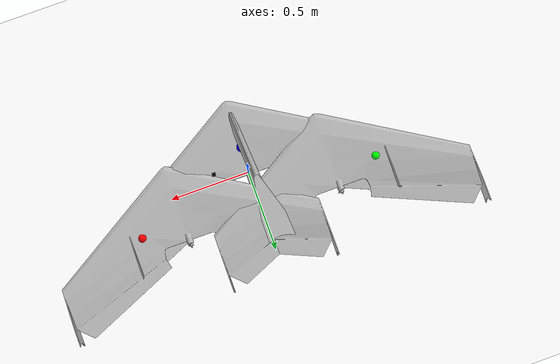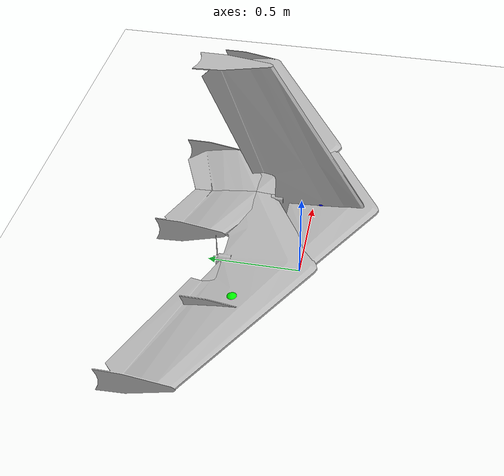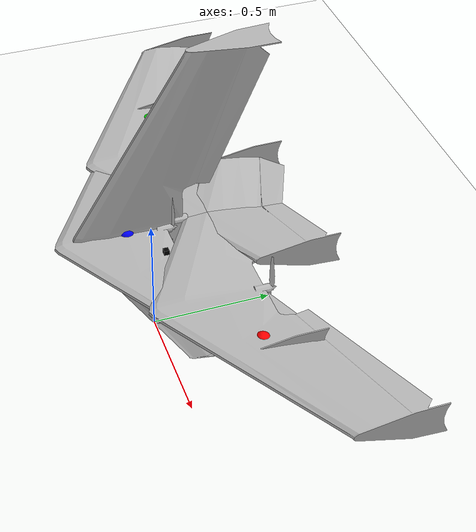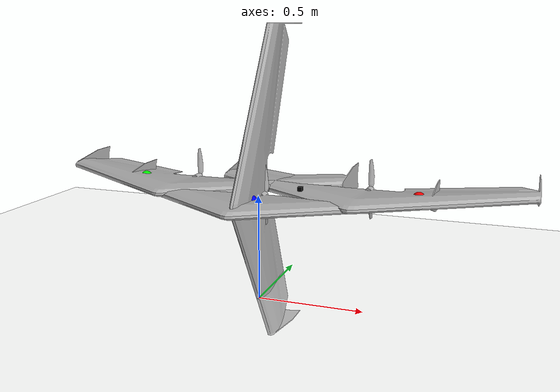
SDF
<?xml version="1.0" ?>
<sdf version="1.9">
  <world name="zephyr_runway">
    <physics name="1ms" type="ignored">
      <max_step_size>0.001</max_step_size>
      <real_time_factor>1.0</real_time_factor>
    </physics>

    <plugin filename="gz-sim-physics-system" name="gz::sim::systems::Physics"></plugin>
    <plugin filename="gz-sim-user-commands-system" name="gz::sim::systems::UserCommands"></plugin>
    <plugin filename="gz-sim-scene-broadcaster-system" name="gz::sim::systems::SceneBroadcaster"></plugin>
    <plugin filename="gz-sim-imu-system" name="gz::sim::systems::Imu"></plugin>
    <plugin filename="gz-sim-navsat-system" name="gz::sim::systems::NavSat"></plugin>
    <plugin filename="gz-sim-sensors-system" name="gz::sim::systems::Sensors"></plugin>

    <scene>
      <ambient>1.0 1.0 1.0</ambient>
      <background>0.8 0.8 0.8</background>
      <sky></sky>
    </scene>

<spherical_coordinates>
  <surface_model>EARTH_WGS84</surface_model>
  <latitude_deg>17.540972</latitude_deg>  <longitude_deg>78.576333</longitude_deg> <elevation>580.0</elevation>             <heading_deg>0</heading_deg>
</spherical_coordinates>

    <light type="directional" name="sun">
      <cast_shadows>true</cast_shadows>
      <pose>0 0 10 0 0 0</pose>
      <diffuse>0.8 0.8 0.8 1</diffuse>
      <specular>0.8 0.8 0.8 1</specular>
      <attenuation>
        <range>1000</range>
        <constant>0.9</constant>
        <linear>0.01</linear>
        <quadratic>0.001</quadratic>
      </attenuation>
      <direction>-0.5 0.1 -0.9</direction>
    </light>

	<model name="ground_plane">
      <static>true</static>
      <link name="link">
        <collision name="collision">
          <geometry>
            <plane>
              <normal>0 0 1</normal>
              <size>5000 5000</size>
            </plane>
          </geometry>
        </collision>
        <visual name="visual">
          <geometry>
            <plane>
              <normal>0 0 1</normal>
              <size>5000 5000</size>
            </plane>
          </geometry>
          <material>
            <ambient>1 1 1 1</ambient>
            <diffuse>1 1 1 1</diffuse>
            <specular>0.2 0.2 0.2 1</specular>
            <pbr>
              <metal>
                <albedo_map>file:///home/kritz/ardupilot_gazebo/materials/textures/bits_texture.png</albedo_map>
                <roughness>0.6</roughness>
                <metalness>0.1</metalness>
              </metal>
            </pbr>
          </material>
        </visual>
      </link>
    </model>

    <include>
      <uri>model://zephyr_with_ardupilot</uri>
      <pose degrees="true">0 0 0.5 0 0 0</pose>
    </include>

  </world>
</sdf>

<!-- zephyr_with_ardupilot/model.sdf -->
<sdf version="1.9">
  <model name="zephyr_with_ardupilot">
    <include>
      <uri>model://zephyr</uri>
    </include>

    <link name="camera_link">
      <pose>0.2 0 0.05 0 0 0</pose> <inertial>
        <mass>0.01</mass>
        <inertia>
          <ixx>0.0001</ixx><ixy>0</ixy><ixz>0</ixz>
          <iyy>0.0001</iyy><iyz>0</iyz>
          <izz>0.0001</izz>
        </inertia>
      </inertial>
      <visual name="camera_visual">
        <geometry>
          <box>
            <size>0.02 0.02 0.02</size> </box>
        </geometry>
        <material>
          <ambient>0 0 0 1</ambient>
          <diffuse>0 0 0 1</diffuse>
        </material>
      </visual>
      <sensor name="camera" type="camera">
        <pose>0 0 0 0 0 0</pose>
        <camera>
          <horizontal_fov>1.047</horizontal_fov>
          <image>
            <width>640</width>
            <height>480</height>
          </image>
          <clip>
            <near>0.1</near>
            <far>1000</far>
          </clip>
        </camera>
        <always_on>1</always_on>
        <update_rate>30</update_rate>
        <visualize>true</visualize>
        <topic>camera</topic>
      </sensor>
    </link>

    <joint name="camera_mount_joint" type="fixed">
      <parent>zephyr::wing</parent>
      <child>camera_link</child>
    </joint>
    <plugin filename="gz-sim-joint-state-publisher-system"
      name="gz::sim::systems::JointStatePublisher">
    </plugin>
    <plugin filename="gz-sim-lift-drag-system"
        name="gz::sim::systems::LiftDrag">
      <a0>0.13</a0>
      <cla>3.7</cla>
      <cda>0.06417112299</cda>
      <cma>0.0</cma>
      <alpha_stall>0.3391428111</alpha_stall>
      <cla_stall>-3.85</cla_stall>
      <cda_stall>-0.9233984055</cda_stall>
      <cma_stall>0.0</cma_stall>
      <cp>0 -0.1 0</cp>
      <area>0.50</area>
      <air_density>1.2041</air_density>
      <forward>0 -1 0</forward>
      <upward>0 0 1</upward>
      <link_name>zephyr::wing</link_name>
    </plugin>
    <plugin filename="gz-sim-lift-drag-system"
        name="gz::sim::systems::LiftDrag">
      <a0>0.15</a0>
      <cla>6.8</cla>
      <cda>0.06417112299</cda>
      <cma>0.0</cma>
      <alpha_stall>0.6391428111</alpha_stall>
      <cla_stall>-3.85</cla_stall>
      <cda_stall>-0.9233984055</cda_stall>
      <cma_stall>0.0</cma_stall>
      <cp>0.7 0.20 0</cp>
      <area>0.10</area>
      <air_density>1.2041</air_density>
      <forward>0 -1 0</forward>
      <upward>0 0 1</upward>
      <link_name>zephyr::wing</link_name>
      <control_joint_name>zephyr::flap_left_joint</control_joint_name>
      <control_joint_rad_to_cl>-5.0</control_joint_rad_to_cl>
    </plugin>
    <plugin filename="gz-sim-lift-drag-system"
        name="gz::sim::systems::LiftDrag">
      <a0>0.15</a0>
      <cla>6.8</cla>
      <cda>0.06417112299</cda>
      <cma>0.0</cma>
      <alpha_stall>0.6391428111</alpha_stall>
      <cla_stall>-3.85</cla_stall>
      <cda_stall>-0.9233984055</cda_stall>
      <cma_stall>0.0</cma_stall>
      <cp>-0.7 0.20 0</cp>
      <area>0.10</area>
      <air_density>1.2041</air_density>
      <forward>0 -1 0</forward>
      <upward>0 0 1</upward>
      <link_name>zephyr::wing</link_name>
      <control_joint_name>zephyr::flap_right_joint</control_joint_name>
      <control_joint_rad_to_cl>-5.0</control_joint_rad_to_cl>
    </plugin>
    <plugin filename="gz-sim-lift-drag-system"
        name="gz::sim::systems::LiftDrag">
      <a0>0.0</a0>
      <cla>4.752798721</cla>
      <cda>0.6417112299</cda>
      <cma>0.0</cma>
      <alpha_stall>0.3391428111</alpha_stall>
      <cla_stall>-3.85</cla_stall>
      <cda_stall>-0.9233984055</cda_stall>
      <cma_stall>0.0</cma_stall>
      <cp>-0.76 0.30 0.025</cp>
      <area>0.12</area>
      <air_density>1.2041</air_density>
      <forward>0 -1 0</forward>
      <upward>1 0 0</upward>
      <link_name>zephyr::wing</link_name>
    </plugin>
    <plugin filename="gz-sim-lift-drag-system"
        name="gz::sim::systems::LiftDrag">
      <a0>0.0</a0>
      <cla>4.752798721</cla>
      <cda>0.6417112299</cda>
      <cma>0.0</cma>
      <alpha_stall>0.3391428111</alpha_stall>
      <cla_stall>-3.85</cla_stall>
      <cda_stall>-0.9233984055</cda_stall>
      <cma_stall>0.0</cma_stall>
      <cp>0.76 0.30 0.025</cp>
      <area>0.12</area>
      <air_density>1.2041</air_density>
      <forward>0 -1 0</forward>
      <upward>1 0 0</upward>
      <link_name>zephyr::wing</link_name>
    </plugin>
    <plugin filename="gz-sim-lift-drag-system"
        name="gz::sim::systems::LiftDrag">
      <a0>0.30</a0>
      <alpha_stall>1.4</alpha_stall>
      <cla>4.2500</cla>
      <cda>0.10</cda>
      <cma>0.0</cma>
      <cla_stall>-0.025</cla_stall>
      <cda_stall>0.0</cda_stall>
      <cma_stall>0.0</cma_stall>
      <area>0.02</area>
      <air_density>1.2041</air_density>
      <cp>0 0 0.074205</cp>
      <forward>-1 0 0</forward>
      <upward>0 -1 0</upward>
      <link_name>zephyr::propeller</link_name>
    </plugin>
    <plugin filename="gz-sim-lift-drag-system"
        name="gz::sim::systems::LiftDrag">
      <a0>0.30</a0>
      <alpha_stall>1.4</alpha_stall>
      <cla>4.2500</cla>
      <cda>0.10</cda>
      <cma>0.0</cma>
      <cla_stall>-0.025</cla_stall>
      <cda_stall>0.0</cda_stall>
      <cma_stall>0.0</cma_stall>
      <area>0.02</area>
      <air_density>1.2041</air_density>
      <cp>0 0 -0.074205</cp>
      <forward>1 0 0</forward>
      <upward>0 -1 0</upward>
      <link_name>zephyr::propeller</link_name>
    </plugin>

    <plugin filename="gz-sim-apply-joint-force-system"
      name="gz::sim::systems::ApplyJointForce">
      <joint_name>zephyr::propeller_joint</joint_name>
    </plugin>
    <plugin filename="gz-sim-apply-joint-force-system"
      name="gz::sim::systems::ApplyJointForce">
      <joint_name>zephyr::flap_left_joint</joint_name>
    </plugin>
    <plugin filename="gz-sim-apply-joint-force-system"
      name="gz::sim::systems::ApplyJointForce">
      <joint_name>zephyr::flap_right_joint</joint_name>
    </plugin>

    <plugin name="ArduPilotPlugin" filename="ArduPilotPlugin">
      <fdm_addr>127.0.0.1</fdm_addr>
      <fdm_port_in>9002</fdm_port_in>
      <connectionTimeoutMaxCount>5</connectionTimeoutMaxCount>
      <lock_step>1</lock_step>
      <modelXYZToAirplaneXForwardZDown degrees="true">0 0 0 180 0 -90</modelXYZToAirplaneXForwardZDown>
      <gazeboXYZToNED degrees="true">0 0 0 180 0 90</gazeboXYZToNED>
      <imuName>zephyr::imu_link::imu_sensor</imuName>
      <control channel="2">
        <jointName>zephyr::propeller_joint</jointName>
        <useForce>1</useForce>
        <multiplier>838</multiplier>
        <offset>0</offset>
        <servo_min>1100</servo_min>
        <servo_max>1900</servo_max>
        <type>VELOCITY</type>
        <p_gain>0.20</p_gain>
        <i_gain>0</i_gain>
        <d_gain>0</d_gain>
        <i_max>0</i_max>
        <i_min>0</i_min>
        <cmd_max>2.5</cmd_max>
        <cmd_min>0.0</cmd_min>
      </control>
      <control channel="0">
        <jointName>zephyr::flap_left_joint</jointName>
        <useForce>1</useForce>
        <multiplier>-1.048</multiplier>
        <offset>-0.5</offset>
        <servo_min>1100</servo_min>
        <servo_max>1900</servo_max>
        <type>POSITION</type>
        <p_gain>10.0</p_gain>
        <i_gain>0</i_gain>
        <d_gain>0</d_gain>
        <i_max>0</i_max>
        <i_min>0</i_min>
        <cmd_max>2.5</cmd_max>
        <cmd_min>-2.5</cmd_min>
      </control>
      <control channel="1">
        <jointName>zephyr::flap_right_joint</jointName>
        <useForce>1</useForce>
        <multiplier>-1.048</multiplier>
        <offset>-0.5</offset>
        <servo_min>1100</servo_min>
        <servo_max>1900</servo_max>
        <type>POSITION</type>
        <p_gain>10.0</p_gain>
        <i_gain>0</i_gain>
        <d_gain>0</d_gain>
        <i_max>0</i_max>
        <i_min>0</i_min>
        <cmd_max>2.5</cmd_max>
        <cmd_min>-2.5</cmd_min>
      </control>
    </plugin>

  </model>
</sdf>

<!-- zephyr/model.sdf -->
<sdf version="1.9">
  <model name="zephyr">
    <link name="wing">
      <inertial>
        <pose>0 -0.12 0 0 0 0</pose>
        <mass>1.5</mass>
        <inertia>
          <ixx>0.083137104</ixx>
          <ixy>0</ixy>
          <iyy>0.387382402</iyy>
          <ixz>0</ixz>
          <iyz>0</iyz>
          <izz>0.469845106</izz>
        </inertia>
      </inertial>
      <visual name="visual">
        <geometry>
          <mesh>
            <uri>model://zephyr/meshes/wing.dae</uri>
            <submesh>
              <name>Wing</name>
              <center>true</center>
            </submesh>
          </mesh>
        </geometry>
      </visual>
      <collision name="body_collision">
        <geometry>
          <mesh>
            <uri>model://zephyr/meshes/wing.dae</uri>
            <submesh>
              <name>Wing</name>
              <center>true</center>
            </submesh>
          </mesh>
        </geometry>
      </collision>
      <collision name="right_rudder_collision">
        <pose>-0.76435 0.33918 0.002 -0.03 0 0</pose>
        <geometry>
          <box>
            <size>.005 0.12993 .12688</size>
          </box>
        </geometry>
      </collision>
      <collision name="left_rudder_collision">
        <pose>0.76435 0.33918 0.002 -0.03 0 0</pose>
        <geometry>
          <box>
            <size>.005 0.12993 .12688</size>
          </box>
        </geometry>
      </collision>

      <!-- save center of pressure locations for debugging -->
      <visual name="cp_wing">
        <pose>0 -0.1 0.0 0 0 0</pose>
        <geometry>
          <sphere>
            <radius>0.03</radius>
          </sphere>
        </geometry>
        <material>
          <ambient>0 0 1</ambient>
          <diffuse>0 0 1</diffuse>
          <specular>0.1 0.1 0.1 1</specular>
        </material>
      </visual>
      <visual name="cp_flap_left">
        <pose>0.7 0.20 0 0 0 0</pose>
        <geometry>
          <sphere>
            <radius>0.03</radius>
          </sphere>
        </geometry>
        <material>
          <ambient>1 0 0</ambient>
          <diffuse>1 0 0</diffuse>
          <specular>0.1 0.1 0.1 1</specular>
        </material>
      </visual>
      <visual name="cp_flap_right">
        <pose>-0.7 0.20 0 0 0 0</pose>
        <geometry>
          <sphere>
            <radius>0.03</radius>
          </sphere>
        </geometry>
        <material>
          <ambient>0 1 0</ambient>
          <diffuse>0 1 0</diffuse>
          <specular>0.1 0.1 0.1 1</specular>
        </material>
      </visual>

    </link>
    <link name="propeller">
      <pose degrees="true">0 0.07 0.008 0 90 0</pose>
      <inertial>
        <mass>.05</mass>
        <inertia>
          <ixx>0.000367571</ixx>
          <ixy>0</ixy>
          <iyy>0.00036985</iyy>
          <ixz>0</ixz>
          <iyz>0</iyz>
          <izz>0.000003187</izz>
        </inertia>
      </inertial>
      <visual name="visual">
        <geometry>
          <mesh>
            <uri>model://zephyr/meshes/wing.dae</uri>
            <submesh>
              <name>Propeller</name>
              <center>true</center>
            </submesh>
          </mesh>
        </geometry>
      </visual>
      <collision name="blade1">
        <pose>0 0 0.074205 0 0  0.3</pose>
        <geometry>
          <box>
            <size>0.02561 0.00541 0.14841</size>
          </box>
        </geometry>
      </collision>
      <collision name="blade2">
        <pose>0 0 -0.074205 0 0  -0.3</pose>
        <geometry>
          <box>
            <size>0.02561 0.00541 0.14841</size>
          </box>
        </geometry>
      </collision>
    </link>
    <link name="flap_left">
      <pose>0.4530 .239 0.007 0 0 0</pose>
      <inertial>
        <pose>0 0 0 0 0 0.32445671</pose>
        <mass>.1</mass>
        <inertia>
          <ixx>0.000102319</ixx>
          <ixy>0</ixy>
          <iyy>0.00334417</iyy>
          <ixz>0</ixz>
          <iyz>0</iyz>
          <izz>0.003446072</izz>
        </inertia>
      </inertial>
      <visual name="visual">
        <geometry>
          <mesh>
            <uri>model://zephyr/meshes/wing.dae</uri>
            <submesh>
              <name>Flap_Left</name>
              <center>true</center>
            </submesh>
          </mesh>
        </geometry>
      </visual>
      <collision name="collision">
        <pose>-0.01 0.01 0 0 0 0.32445671</pose>
        <geometry>
          <box>
            <size>0.633463031 0.110694312 0.005</size>
          </box>
        </geometry>
      </collision>
    </link>
    <link name="flap_right">
      <pose>-0.4530 .239 0.007 0 0 0</pose>
      <inertial>
        <pose>0 0 0 0 0 -0.32445671</pose>
        <mass>.1</mass>
        <inertia>
          <ixx>0.000102319</ixx>
          <ixy>0</ixy>
          <iyy>0.00334417</iyy>
          <ixz>0</ixz>
          <iyz>0</iyz>
          <izz>0.003446072</izz>
        </inertia>
      </inertial>
      <visual name="visual">
        <geometry>
          <mesh>
            <uri>model://zephyr/meshes/wing.dae</uri>
            <submesh>
              <name>Flap_Right</name>
              <center>true</center>
            </submesh>
          </mesh>
        </geometry>
      </visual>
      <collision name="collision">
        <pose>0.01 0.01 0 0 0 -0.32445671</pose>
        <geometry>
          <box>
            <size>0.633463031 0.110694312 0.005</size>
          </box>
        </geometry>
      </collision>
    </link>
    <joint name="propeller_joint" type="revolute">
      <parent>wing</parent>
      <child>propeller</child>
      <axis>
        <xyz>0 -1 0</xyz>
        <dynamics>
          <damping>0.002</damping>
        </dynamics>
      </axis>
    </joint>
    <joint name="flap_left_joint" type="revolute">
      <parent>wing</parent>
      <child>flap_left</child>
      <pose>0 -0.04 0 0 0 0</pose>
      <axis>
        <xyz>1 0.330321014 0</xyz>
        <limit>
          <lower>-0.524</lower>
          <upper>0.524</upper>
        </limit>
        <dynamics>
          <damping>0.1</damping>
        </dynamics>
      </axis>
    </joint>
    <joint name="flap_right_joint" type="revolute">
      <parent>wing</parent>
      <child>flap_right</child>
      <pose>0 -0.04 0 0 0 0</pose>
      <axis>
        <xyz>1 -0.330321014 0</xyz>
        <limit>
          <lower>-0.524</lower>
          <upper>0.524</upper>
        </limit>
        <dynamics>
          <damping>0.1</damping>
        </dynamics>
      </axis>
    </joint>

    <!-- sensors -->
    <link name='imu_link'>
      <inertial>
        <pose>0 0 0 0 0 0</pose>
        <mass>0.15</mass>
        <inertia>
          <ixx>0.00002</ixx>
          <ixy>0</ixy>
          <ixz>0</ixz>
          <iyy>0.00002</iyy>
          <iyz>0</iyz>
          <izz>0.00002</izz>
        </inertia>
      </inertial>
      <sensor name="imu_sensor" type="imu">
        <gz_frame_id>imu_link</gz_frame_id>
        <pose degrees="true">0 0 0 180 0 -90</pose>
        <always_on>1</always_on>
        <update_rate>1000.0</update_rate>
      </sensor>
    </link>
    <joint name='imu_joint' type='revolute'>
      <child>imu_link</child>
      <parent>wing</parent>
      <axis>
        <xyz>0 0 1</xyz>
        <limit>
          <lower>0</lower>
          <upper>0</upper>
          <effort>0</effort>
          <velocity>0</velocity>
        </limit>
        <dynamics>
          <damping>1.0</damping>
        </dynamics>
      </axis>
    </joint>
  </model>
</sdf>
